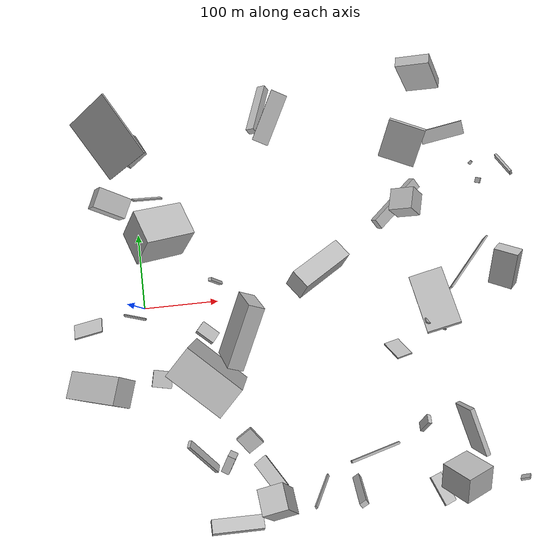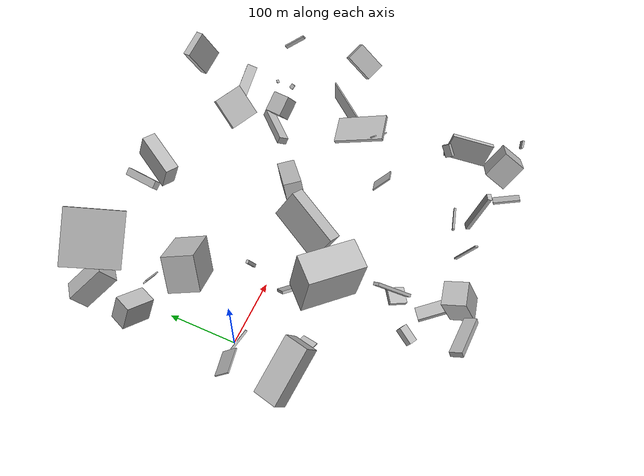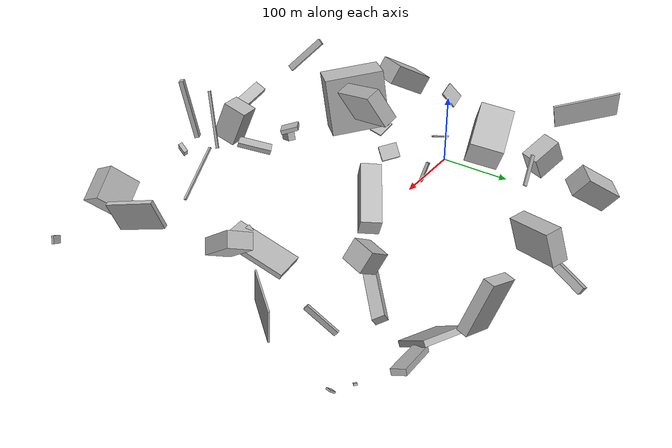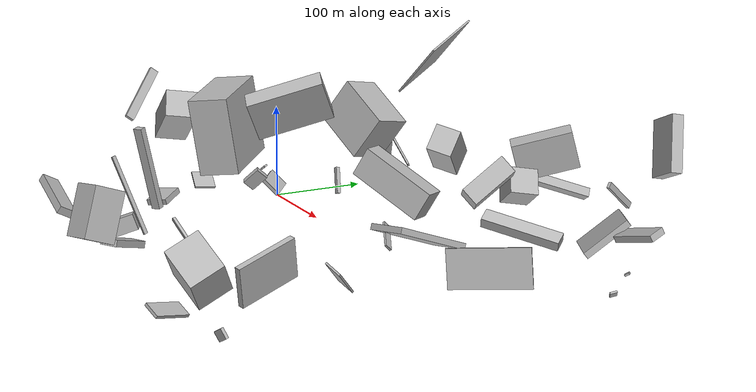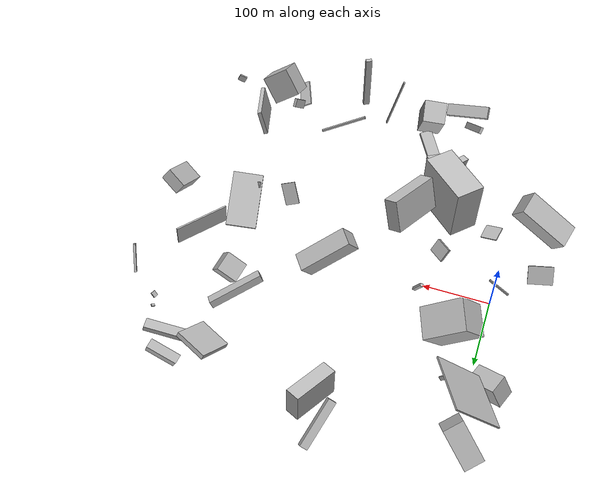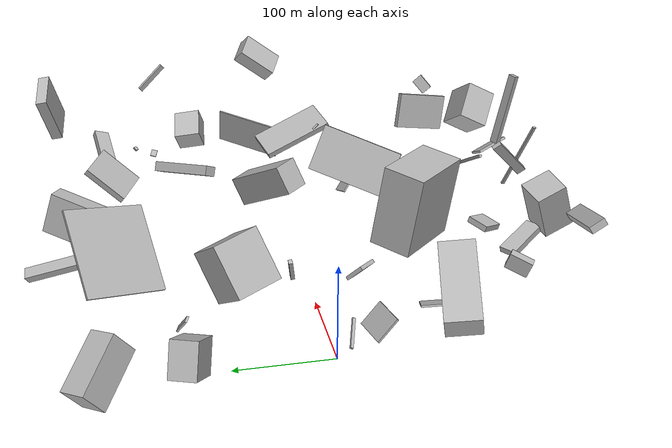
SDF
<sdf version="1.6">
 <world name="default">
  <scene>
   <sky><clouds><speed>12</speed></clouds></sky>
   <ambient>0.4 0.4 0.4 1</ambient>
   <background>0.7 0.7 0.7 1</background>
   <shadows>1</shadows>
  </scene>
  <gravity>0 0 -9.8066</gravity>
  <magnetic_field>6e-06 2.3e-05 -4.2e-05</magnetic_field>
  <physics default="0" name="default_physics" type="ode">
   <ode>
    <solver>
     <type>quick</type>
     <iters>10</iters>
     <sor>1.0</sor>
     <use_dynamic_moi_rescaling>0</use_dynamic_moi_rescaling>
    </solver>
    <constraints>
     <cfm>0</cfm>
     <erp>0.2</erp>
     <contact_max_correcting_vel>100</contact_max_correcting_vel>
     <contact_surface_layer>0.001</contact_surface_layer>
    </constraints>
   </ode>
   <max_step_size>0.004</max_step_size>
   <real_time_factor>1</real_time_factor>
   <real_time_update_rate>250</real_time_update_rate>
  </physics>
  <light name="sun" type="directional">
   <pose>0 0 10 0 0 0</pose>
   <diffuse>0.8 0.8 0.8 1</diffuse>
   <specular>0.2 0.2 0.2 1</specular>
   <attenuation>
    <range>1000</range>
    <constant>0.9</constant>
    <linear>0.01</linear>
    <quadratic>0.001</quadratic>
   </attenuation>
   <direction>-0.5 0.1 -0.9</direction>
  </light>
  <model name="building_1">
   <static>0</static>
   <pose>174.76403393132625 -261.1916165570033 57.12076695468662 -1.9465852813466014 -1.1806291250612504 2.127723736219772</pose>
   <link name="link">
    <gravity>0</gravity>
    <pose>0 0 17.0 0 0 0</pose>
    <collision name="collision"><geometry><box><size>53 34 34</size></box></geometry></collision>
    <visual name="visual">
     <cast_shadows>0</cast_shadows>
     <geometry><box><size>53 34 34</size></box></geometry>
     <material>
      <script>
       <uri>model://HANNAS_wall/materials/scripts</uri>
       <uri>model://HANNAS_wall/materials/textures</uri>
       <name>vrc/HANNAS_wall</name>
      </script>
     </material>
    </visual>
   </link>
  </model>
  <model name="building_2">
   <static>0</static>
   <pose>137.44057485879497 -193.82288614932293 51.82296679797397 0.5368724675130798 -1.267826346137055 -1.5012754337377865</pose>
   <link name="link">
    <gravity>0</gravity>
    <pose>0 0 12.5 0 0 0</pose>
    <collision name="collision"><geometry><box><size>6 23 25</size></box></geometry></collision>
    <visual name="visual">
     <cast_shadows>0</cast_shadows>
     <geometry><box><size>6 23 25</size></box></geometry>
     <material>
      <script>
       <uri>model://HANNAS_wall/materials/scripts</uri>
       <uri>model://HANNAS_wall/materials/textures</uri>
       <name>vrc/HANNAS_wall</name>
      </script>
     </material>
    </visual>
   </link>
  </model>
  <model name="building_3">
   <static>0</static>
   <pose>-13.142332344623217 229.01330973129404 36.53039877717357 2.516140512679927 0.23581262248129323 0.7354039695643405</pose>
   <link name="link">
    <gravity>0</gravity>
    <pose>0 0 16.0 0 0 0</pose>
    <collision name="collision"><geometry><box><size>30 62 32</size></box></geometry></collision>
    <visual name="visual">
     <cast_shadows>0</cast_shadows>
     <geometry><box><size>30 62 32</size></box></geometry>
     <material>
      <script>
       <uri>model://HANNAS_wall/materials/scripts</uri>
       <uri>model://HANNAS_wall/materials/textures</uri>
       <name>vrc/HANNAS_wall</name>
      </script>
     </material>
    </visual>
   </link>
  </model>
  <model name="building_4">
   <static>0</static>
   <pose>341.40589881930543 -98.12949780086578 26.922343741297254 -2.4000473050274187 0.3323563464819184 0.2360422141787129</pose>
   <link name="link">
    <gravity>0</gravity>
    <pose>0 0 17.0 0 0 0</pose>
    <collision name="collision"><geometry><box><size>22 2 34</size></box></geometry></collision>
    <visual name="visual">
     <cast_shadows>0</cast_shadows>
     <geometry><box><size>22 2 34</size></box></geometry>
     <material>
      <script>
       <uri>model://HANNAS_wall/materials/scripts</uri>
       <uri>model://HANNAS_wall/materials/textures</uri>
       <name>vrc/HANNAS_wall</name>
      </script>
     </material>
    </visual>
   </link>
  </model>
  <model name="building_5">
   <static>0</static>
   <pose>420.4450706443261 192.08133600425467 38.244185157729746 -0.3460875319772496 0.2630541077948425 -3.0369151049938066</pose>
   <link name="link">
    <gravity>0</gravity>
    <pose>0 0 3.5 0 0 0</pose>
    <collision name="collision"><geometry><box><size>55 17 7</size></box></geometry></collision>
    <visual name="visual">
     <cast_shadows>0</cast_shadows>
     <geometry><box><size>55 17 7</size></box></geometry>
     <material>
      <script>
       <uri>model://HANNAS_wall/materials/scripts</uri>
       <uri>model://HANNAS_wall/materials/textures</uri>
       <name>vrc/HANNAS_wall</name>
      </script>
     </material>
    </visual>
   </link>
  </model>
  <model name="building_6">
   <static>0</static>
   <pose>385.37197031461307 -246.12111310681948 49.98762739021009 -0.5796066343864041 -0.5728979590765522 -2.880075444618117</pose>
   <link name="link">
    <gravity>0</gravity>
    <pose>0 0 21.5 0 0 0</pose>
    <collision name="collision"><geometry><box><size>44 35 43</size></box></geometry></collision>
    <visual name="visual">
     <cast_shadows>0</cast_shadows>
     <geometry><box><size>44 35 43</size></box></geometry>
     <material>
      <script>
       <uri>model://HANNAS_wall/materials/scripts</uri>
       <uri>model://HANNAS_wall/materials/textures</uri>
       <name>vrc/HANNAS_wall</name>
      </script>
     </material>
    </visual>
   </link>
  </model>
  <model name="building_7">
   <static>0</static>
   <pose>-39.9601043361984 -20.543655618854164 73.91738490680595 1.48428821573666 -0.7788766664314518 -1.3211727748820783</pose>
   <link name="link">
    <gravity>0</gravity>
    <pose>0 0 17.5 0 0 0</pose>
    <collision name="collision"><geometry><box><size>26 2 35</size></box></geometry></collision>
    <visual name="visual">
     <cast_shadows>0</cast_shadows>
     <geometry><box><size>26 2 35</size></box></geometry>
     <material>
      <script>
       <uri>model://HANNAS_wall/materials/scripts</uri>
       <uri>model://HANNAS_wall/materials/textures</uri>
       <name>vrc/HANNAS_wall</name>
      </script>
     </material>
    </visual>
   </link>
  </model>
  <model name="building_8">
   <static>0</static>
   <pose>179.3774530188167 196.8957567592833 58.07764618887804 0.5809827563374339 1.263327074928431 1.6734442774629361</pose>
   <link name="link">
    <gravity>0</gravity>
    <pose>0 0 33.0 0 0 0</pose>
    <collision name="collision"><geometry><box><size>42 21 66</size></box></geometry></collision>
    <visual name="visual">
     <cast_shadows>0</cast_shadows>
     <geometry><box><size>42 21 66</size></box></geometry>
     <material>
      <script>
       <uri>model://HANNAS_wall/materials/scripts</uri>
       <uri>model://HANNAS_wall/materials/textures</uri>
       <name>vrc/HANNAS_wall</name>
      </script>
     </material>
    </visual>
   </link>
  </model>
  <model name="building_9">
   <static>0</static>
   <pose>458.8393475306712 152.50254787910015 18.227430110443407 0.044626587250302975 -0.5455158420354856 0.7418985183608435</pose>
   <link name="link">
    <gravity>0</gravity>
    <pose>0 0 1.0 0 0 0</pose>
    <collision name="collision"><geometry><box><size>5 4 2</size></box></geometry></collision>
    <visual name="visual">
     <cast_shadows>0</cast_shadows>
     <geometry><box><size>5 4 2</size></box></geometry>
     <material>
      <script>
       <uri>model://HANNAS_wall/materials/scripts</uri>
       <uri>model://HANNAS_wall/materials/textures</uri>
       <name>vrc/HANNAS_wall</name>
      </script>
     </material>
    </visual>
   </link>
  </model>
  <model name="building_10">
   <static>0</static>
   <pose>-21.14311308867637 151.84861686285404 38.23058987535932 1.479029737121212 -1.1069019069430237 -0.313514356927555</pose>
   <link name="link">
    <gravity>0</gravity>
    <pose>0 0 13.5 0 0 0</pose>
    <collision name="collision"><geometry><box><size>36 43 27</size></box></geometry></collision>
    <visual name="visual">
     <cast_shadows>0</cast_shadows>
     <geometry><box><size>36 43 27</size></box></geometry>
     <material>
      <script>
       <uri>model://HANNAS_wall/materials/scripts</uri>
       <uri>model://HANNAS_wall/materials/textures</uri>
       <name>vrc/HANNAS_wall</name>
      </script>
     </material>
    </visual>
   </link>
  </model>
  <model name="building_11">
   <static>0</static>
   <pose>99.6776641434036 -211.57683173928814 13.247598254533065 0.0012277414334820288 -0.34665042151826614 1.047330094114253</pose>
   <link name="link">
    <gravity>0</gravity>
    <pose>0 0 8.5 0 0 0</pose>
    <collision name="collision"><geometry><box><size>25 11 17</size></box></geometry></collision>
    <visual name="visual">
     <cast_shadows>0</cast_shadows>
     <geometry><box><size>25 11 17</size></box></geometry>
     <material>
      <script>
       <uri>model://HANNAS_wall/materials/scripts</uri>
       <uri>model://HANNAS_wall/materials/textures</uri>
       <name>vrc/HANNAS_wall</name>
      </script>
     </material>
    </visual>
   </link>
  </model>
  <model name="building_12">
   <static>0</static>
   <pose>50.98160392997099 65.51958481712794 90.52834760144931 -1.809222895999977 0.5750059273270411 0.23906830678151994</pose>
   <link name="link">
    <gravity>0</gravity>
    <pose>0 0 22.5 0 0 0</pose>
    <collision name="collision"><geometry><box><size>64 53 45</size></box></geometry></collision>
    <visual name="visual">
     <cast_shadows>0</cast_shadows>
     <geometry><box><size>64 53 45</size></box></geometry>
     <material>
      <script>
       <uri>model://HANNAS_wall/materials/scripts</uri>
       <uri>model://HANNAS_wall/materials/textures</uri>
       <name>vrc/HANNAS_wall</name>
      </script>
     </material>
    </visual>
   </link>
  </model>
  <model name="building_13">
   <static>0</static>
   <pose>-7.187353662784126 -13.824334462030851 30.850927333399234 -1.0000670019439075 -0.3531880219953244 -0.2892009443397319</pose>
   <link name="link">
    <gravity>0</gravity>
    <pose>0 0 1.5 0 0 0</pose>
    <collision name="collision"><geometry><box><size>34 2 3</size></box></geometry></collision>
    <visual name="visual">
     <cast_shadows>0</cast_shadows>
     <geometry><box><size>34 2 3</size></box></geometry>
     <material>
      <script>
       <uri>model://HANNAS_wall/materials/scripts</uri>
       <uri>model://HANNAS_wall/materials/textures</uri>
       <name>vrc/HANNAS_wall</name>
      </script>
     </material>
    </visual>
   </link>
  </model>
  <model name="building_14">
   <static>0</static>
   <pose>481.45745124884013 112.47323494386518 116.5465768185419 2.2764907275434236 0.08501116396194307 -2.7781557167793793</pose>
   <link name="link">
    <gravity>0</gravity>
    <pose>0 0 19.5 0 0 0</pose>
    <collision name="collision"><geometry><box><size>3 6 39</size></box></geometry></collision>
    <visual name="visual">
     <cast_shadows>0</cast_shadows>
     <geometry><box><size>3 6 39</size></box></geometry>
     <material>
      <script>
       <uri>model://HANNAS_wall/materials/scripts</uri>
       <uri>model://HANNAS_wall/materials/textures</uri>
       <name>vrc/HANNAS_wall</name>
      </script>
     </material>
    </visual>
   </link>
  </model>
  <model name="building_15">
   <static>0</static>
   <pose>77.67252831710414 -33.88355130005083 42.78044018897742 1.7903127179378941 -0.7527502821461889 0.6846464998567802</pose>
   <link name="link">
    <gravity>0</gravity>
    <pose>0 0 13.0 0 0 0</pose>
    <collision name="collision"><geometry><box><size>4 21 26</size></box></geometry></collision>
    <visual name="visual">
     <cast_shadows>0</cast_shadows>
     <geometry><box><size>4 21 26</size></box></geometry>
     <material>
      <script>
       <uri>model://HANNAS_wall/materials/scripts</uri>
       <uri>model://HANNAS_wall/materials/textures</uri>
       <name>vrc/HANNAS_wall</name>
      </script>
     </material>
    </visual>
   </link>
  </model>
  <model name="building_16">
   <static>0</static>
   <pose>137.6421933588809 -215.93511420280944 12.362711757770983 -0.06788354561329682 1.284528008729212 -1.041516225314252</pose>
   <link name="link">
    <gravity>0</gravity>
    <pose>0 0 24.5 0 0 0</pose>
    <collision name="collision"><geometry><box><size>7 19 49</size></box></geometry></collision>
    <visual name="visual">
     <cast_shadows>0</cast_shadows>
     <geometry><box><size>7 19 49</size></box></geometry>
     <material>
      <script>
       <uri>model://HANNAS_wall/materials/scripts</uri>
       <uri>model://HANNAS_wall/materials/textures</uri>
       <name>vrc/HANNAS_wall</name>
      </script>
     </material>
    </visual>
   </link>
  </model>
  <model name="building_17">
   <static>0</static>
   <pose>373.1318777806223 -274.7176386547732 25.29902818068745 2.6531286168737958 -0.22559002088007174 -1.1822902480010686</pose>
   <link name="link">
    <gravity>0</gravity>
    <pose>0 0 1.5 0 0 0</pose>
    <collision name="collision"><geometry><box><size>40 18 3</size></box></geometry></collision>
    <visual name="visual">
     <cast_shadows>0</cast_shadows>
     <geometry><box><size>40 18 3</size></box></geometry>
     <material>
      <script>
       <uri>model://HANNAS_wall/materials/scripts</uri>
       <uri>model://HANNAS_wall/materials/textures</uri>
       <name>vrc/HANNAS_wall</name>
      </script>
     </material>
    </visual>
   </link>
  </model>
  <model name="building_18">
   <static>0</static>
   <pose>456.231169254327 -19.590295817623087 113.45859345393524 -0.8609182686846745 -0.4292945809861269 -0.4669147305411864</pose>
   <link name="link">
    <gravity>0</gravity>
    <pose>0 0 23.0 0 0 0</pose>
    <collision name="collision"><geometry><box><size>29 18 46</size></box></geometry></collision>
    <visual name="visual">
     <cast_shadows>0</cast_shadows>
     <geometry><box><size>29 18 46</size></box></geometry>
     <material>
      <script>
       <uri>model://HANNAS_wall/materials/scripts</uri>
       <uri>model://HANNAS_wall/materials/textures</uri>
       <name>vrc/HANNAS_wall</name>
      </script>
     </material>
    </visual>
   </link>
  </model>
  <model name="building_19">
   <static>0</static>
   <pose>77.12793623367303 -112.44973406344647 107.95508436576495 -0.7183192758088999 -1.4192952107108545 -1.6171817880708719</pose>
   <link name="link">
    <gravity>0</gravity>
    <pose>0 0 21.0 0 0 0</pose>
    <collision name="collision"><geometry><box><size>80 80 42</size></box></geometry></collision>
    <visual name="visual">
     <cast_shadows>0</cast_shadows>
     <geometry><box><size>80 80 42</size></box></geometry>
     <material>
      <script>
       <uri>model://HANNAS_wall/materials/scripts</uri>
       <uri>model://HANNAS_wall/materials/textures</uri>
       <name>vrc/HANNAS_wall</name>
      </script>
     </material>
    </visual>
   </link>
  </model>
  <model name="building_20">
   <static>0</static>
   <pose>144.80835301332218 -57.46919959030744 154.7346637120487 -2.6880887901615846 -0.2967331152909848 1.12169595964467</pose>
   <link name="link">
    <gravity>0</gravity>
    <pose>0 0 23.0 0 0 0</pose>
    <collision name="collision"><geometry><box><size>80 20 46</size></box></geometry></collision>
    <visual name="visual">
     <cast_shadows>0</cast_shadows>
     <geometry><box><size>80 20 46</size></box></geometry>
     <material>
      <script>
       <uri>model://HANNAS_wall/materials/scripts</uri>
       <uri>model://HANNAS_wall/materials/textures</uri>
       <name>vrc/HANNAS_wall</name>
      </script>
     </material>
    </visual>
   </link>
  </model>
  <model name="building_21">
   <static>0</static>
   <pose>361.38698453308814 91.24470686951516 75.87404616083889 -0.1995832959797444 -0.5858015138158924 -0.12545880055004238</pose>
   <link name="link">
    <gravity>0</gravity>
    <pose>0 0 13.0 0 0 0</pose>
    <collision name="collision"><geometry><box><size>31 28 26</size></box></geometry></collision>
    <visual name="visual">
     <cast_shadows>0</cast_shadows>
     <geometry><box><size>31 28 26</size></box></geometry>
     <material>
      <script>
       <uri>model://HANNAS_wall/materials/scripts</uri>
       <uri>model://HANNAS_wall/materials/textures</uri>
       <name>vrc/HANNAS_wall</name>
      </script>
     </material>
    </visual>
   </link>
  </model>
  <model name="building_22">
   <static>0</static>
   <pose>242.94482526041907 29.148469110745395 83.47708698472934 -3.0268179724171405 -0.5027699101539865 -2.5496887325098347</pose>
   <link name="link">
    <gravity>0</gravity>
    <pose>0 0 15.5 0 0 0</pose>
    <collision name="collision"><geometry><box><size>80 26 31</size></box></geometry></collision>
    <visual name="visual">
     <cast_shadows>0</cast_shadows>
     <geometry><box><size>80 26 31</size></box></geometry>
     <material>
      <script>
       <uri>model://HANNAS_wall/materials/scripts</uri>
       <uri>model://HANNAS_wall/materials/textures</uri>
       <name>vrc/HANNAS_wall</name>
      </script>
     </material>
    </visual>
   </link>
  </model>
  <model name="building_23">
   <static>0</static>
   <pose>216.01927561080058 -250.01987470775464 86.20249726469098 2.554027030527731 -1.1876129120100614 -2.252086545282507</pose>
   <link name="link">
    <gravity>0</gravity>
    <pose>0 0 1.0 0 0 0</pose>
    <collision name="collision"><geometry><box><size>80 4 2</size></box></geometry></collision>
    <visual name="visual">
     <cast_shadows>0</cast_shadows>
     <geometry><box><size>80 4 2</size></box></geometry>
     <material>
      <script>
       <uri>model://HANNAS_wall/materials/scripts</uri>
       <uri>model://HANNAS_wall/materials/textures</uri>
       <name>vrc/HANNAS_wall</name>
      </script>
     </material>
    </visual>
   </link>
  </model>
  <model name="building_24">
   <static>0</static>
   <pose>407.8596732715332 -193.32444066660685 39.8004304169948 0.24334353642550166 0.17249963797386592 0.3234302104255207</pose>
   <link name="link">
    <gravity>0</gravity>
    <pose>0 0 20.5 0 0 0</pose>
    <collision name="collision"><geometry><box><size>6 65 41</size></box></geometry></collision>
    <visual name="visual">
     <cast_shadows>0</cast_shadows>
     <geometry><box><size>6 65 41</size></box></geometry>
     <material>
      <script>
       <uri>model://HANNAS_wall/materials/scripts</uri>
       <uri>model://HANNAS_wall/materials/textures</uri>
       <name>vrc/HANNAS_wall</name>
      </script>
     </material>
    </visual>
   </link>
  </model>
  <model name="building_25">
   <static>0</static>
   <pose>82.13633705001527 -186.98827346890664 150.10142929091128 0.9679443906152291 -0.7559394659294586 2.1484317698526265</pose>
   <link name="link">
    <gravity>0</gravity>
    <pose>0 0 2.0 0 0 0</pose>
    <collision name="collision"><geometry><box><size>60 9 4</size></box></geometry></collision>
    <visual name="visual">
     <cast_shadows>0</cast_shadows>
     <geometry><box><size>60 9 4</size></box></geometry>
     <material>
      <script>
       <uri>model://HANNAS_wall/materials/scripts</uri>
       <uri>model://HANNAS_wall/materials/textures</uri>
       <name>vrc/HANNAS_wall</name>
      </script>
     </material>
    </visual>
   </link>
  </model>
  <model name="building_26">
   <static>0</static>
   <pose>39.47801462366442 143.51573219266027 26.292073019996838 0.547392998861649 -0.6383210738935039 -0.6093533385644211</pose>
   <link name="link">
    <gravity>0</gravity>
    <pose>0 0 22.0 0 0 0</pose>
    <collision name="collision"><geometry><box><size>6 2 44</size></box></geometry></collision>
    <visual name="visual">
     <cast_shadows>0</cast_shadows>
     <geometry><box><size>6 2 44</size></box></geometry>
     <material>
      <script>
       <uri>model://HANNAS_wall/materials/scripts</uri>
       <uri>model://HANNAS_wall/materials/textures</uri>
       <name>vrc/HANNAS_wall</name>
      </script>
     </material>
    </visual>
   </link>
  </model>
  <model name="building_27">
   <static>0</static>
   <pose>260.9651761940514 -249.5442545033747 122.0985784056435 0.4588615325075218 -1.3611044292075112 -1.4996495077090144</pose>
   <link name="link">
    <gravity>0</gravity>
    <pose>0 0 3.0 0 0 0</pose>
    <collision name="collision"><geometry><box><size>80 9 6</size></box></geometry></collision>
    <visual name="visual">
     <cast_shadows>0</cast_shadows>
     <geometry><box><size>80 9 6</size></box></geometry>
     <material>
      <script>
       <uri>model://HANNAS_wall/materials/scripts</uri>
       <uri>model://HANNAS_wall/materials/textures</uri>
       <name>vrc/HANNAS_wall</name>
      </script>
     </material>
    </visual>
   </link>
  </model>
  <model name="building_28">
   <static>0</static>
   <pose>106.92760613358567 -284.28177144594923 65.42198563969656 2.8442884991821793 -0.4960458840091229 -1.4737273084882798</pose>
   <link name="link">
    <gravity>0</gravity>
    <pose>0 0 4.0 0 0 0</pose>
    <collision name="collision"><geometry><box><size>18 66 8</size></box></geometry></collision>
    <visual name="visual">
     <cast_shadows>0</cast_shadows>
     <geometry><box><size>18 66 8</size></box></geometry>
     <material>
      <script>
       <uri>model://HANNAS_wall/materials/scripts</uri>
       <uri>model://HANNAS_wall/materials/textures</uri>
       <name>vrc/HANNAS_wall</name>
      </script>
     </material>
    </visual>
   </link>
  </model>
  <model name="building_29">
   <static>0</static>
   <pose>103.12375354553565 21.904507703104645 39.356476627234976 1.745817009843516 0.40621714136695314 -3.076673244209159</pose>
   <link name="link">
    <gravity>0</gravity>
    <pose>0 0 2.0 0 0 0</pose>
    <collision name="collision"><geometry><box><size>5 28 4</size></box></geometry></collision>
    <visual name="visual">
     <cast_shadows>0</cast_shadows>
     <geometry><box><size>5 28 4</size></box></geometry>
     <material>
      <script>
       <uri>model://HANNAS_wall/materials/scripts</uri>
       <uri>model://HANNAS_wall/materials/textures</uri>
       <name>vrc/HANNAS_wall</name>
      </script>
     </material>
    </visual>
   </link>
  </model>
  <model name="building_30">
   <static>0</static>
   <pose>479.8658516381209 -270.1103902316631 34.00953690963725 -1.3104184468271987 -0.5046083507703536 0.16127115304545706</pose>
   <link name="link">
    <gravity>0</gravity>
    <pose>0 0 1.5 0 0 0</pose>
    <collision name="collision"><geometry><box><size>12 10 3</size></box></geometry></collision>
    <visual name="visual">
     <cast_shadows>0</cast_shadows>
     <geometry><box><size>12 10 3</size></box></geometry>
     <material>
      <script>
       <uri>model://HANNAS_wall/materials/scripts</uri>
       <uri>model://HANNAS_wall/materials/textures</uri>
       <name>vrc/HANNAS_wall</name>
      </script>
     </material>
    </visual>
   </link>
  </model>
  <model name="building_31">
   <static>0</static>
   <pose>366.35268574487105 183.68284184987732 32.224906786450916 2.4721468554616366 0.05811275490167883 2.7054746270924697</pose>
   <link name="link">
    <gravity>0</gravity>
    <pose>0 0 3.5 0 0 0</pose>
    <collision name="collision"><geometry><box><size>50 53 7</size></box></geometry></collision>
    <visual name="visual">
     <cast_shadows>0</cast_shadows>
     <geometry><box><size>50 53 7</size></box></geometry>
     <material>
      <script>
       <uri>model://HANNAS_wall/materials/scripts</uri>
       <uri>model://HANNAS_wall/materials/textures</uri>
       <name>vrc/HANNAS_wall</name>
      </script>
     </material>
    </visual>
   </link>
  </model>
  <model name="building_32">
   <static>0</static>
   <pose>348.1472513573062 -171.63688678211886 130.69845370696294 2.6898747541086494 -0.7210187377703487 -1.6467244325606638</pose>
   <link name="link">
    <gravity>0</gravity>
    <pose>0 0 9.0 0 0 0</pose>
    <collision name="collision"><geometry><box><size>12 5 18</size></box></geometry></collision>
    <visual name="visual">
     <cast_shadows>0</cast_shadows>
     <geometry><box><size>12 5 18</size></box></geometry>
     <material>
      <script>
       <uri>model://HANNAS_wall/materials/scripts</uri>
       <uri>model://HANNAS_wall/materials/textures</uri>
       <name>vrc/HANNAS_wall</name>
      </script>
     </material>
    </visual>
   </link>
  </model>
  <model name="building_33">
   <static>0</static>
   <pose>377.7208316095164 129.30286069609633 31.180583721223798 -1.136677692696024 1.0530025482160619 2.6971068862512038</pose>
   <link name="link">
    <gravity>0</gravity>
    <pose>0 0 40.0 0 0 0</pose>
    <collision name="collision"><geometry><box><size>11 15 80</size></box></geometry></collision>
    <visual name="visual">
     <cast_shadows>0</cast_shadows>
     <geometry><box><size>11 15 80</size></box></geometry>
     <material>
      <script>
       <uri>model://HANNAS_wall/materials/scripts</uri>
       <uri>model://HANNAS_wall/materials/textures</uri>
       <name>vrc/HANNAS_wall</name>
      </script>
     </material>
    </visual>
   </link>
  </model>
  <model name="building_34">
   <static>0</static>
   <pose>381.08700361020374 242.0643938851426 115.07885025046129 2.000015631841515 -1.1449088977233262 2.547188802385154</pose>
   <link name="link">
    <gravity>0</gravity>
    <pose>0 0 6.0 0 0 0</pose>
    <collision name="collision"><geometry><box><size>58 41 12</size></box></geometry></collision>
    <visual name="visual">
     <cast_shadows>0</cast_shadows>
     <geometry><box><size>58 41 12</size></box></geometry>
     <material>
      <script>
       <uri>model://HANNAS_wall/materials/scripts</uri>
       <uri>model://HANNAS_wall/materials/textures</uri>
       <name>vrc/HANNAS_wall</name>
      </script>
     </material>
    </visual>
   </link>
  </model>
  <model name="building_35">
   <static>0</static>
   <pose>388.426412448511 -66.7108204387853 74.80515691991113 -2.7779858219079614 1.175080460288925 -1.0216730269004197</pose>
   <link name="link">
    <gravity>0</gravity>
    <pose>0 0 40.0 0 0 0</pose>
    <collision name="collision"><geometry><box><size>6 44 80</size></box></geometry></collision>
    <visual name="visual">
     <cast_shadows>0</cast_shadows>
     <geometry><box><size>6 44 80</size></box></geometry>
     <material>
      <script>
       <uri>model://HANNAS_wall/materials/scripts</uri>
       <uri>model://HANNAS_wall/materials/textures</uri>
       <name>vrc/HANNAS_wall</name>
      </script>
     </material>
    </visual>
   </link>
  </model>
  <model name="building_36">
   <static>0</static>
   <pose>410.10111234142306 -15.237620175562704 34.68451302303034 0.7670465345547748 -1.458411991662197 -3.0354125790045012</pose>
   <link name="link">
    <gravity>0</gravity>
    <pose>0 0 40.0 0 0 0</pose>
    <collision name="collision"><geometry><box><size>39 2 80</size></box></geometry></collision>
    <visual name="visual">
     <cast_shadows>0</cast_shadows>
     <geometry><box><size>39 2 80</size></box></geometry>
     <material>
      <script>
       <uri>model://HANNAS_wall/materials/scripts</uri>
       <uri>model://HANNAS_wall/materials/textures</uri>
       <name>vrc/HANNAS_wall</name>
      </script>
     </material>
    </visual>
   </link>
  </model>
  <model name="building_37">
   <static>0</static>
   <pose>180.9879517392859 249.138203672921 20.215006833427935 -0.39104072464494655 -0.5333083527080351 -0.09212032412828193</pose>
   <link name="link">
    <gravity>0</gravity>
    <pose>0 0 5.0 0 0 0</pose>
    <collision name="collision"><geometry><box><size>12 72 10</size></box></geometry></collision>
    <visual name="visual">
     <cast_shadows>0</cast_shadows>
     <geometry><box><size>12 72 10</size></box></geometry>
     <material>
      <script>
       <uri>model://HANNAS_wall/materials/scripts</uri>
       <uri>model://HANNAS_wall/materials/textures</uri>
       <name>vrc/HANNAS_wall</name>
      </script>
     </material>
    </visual>
   </link>
  </model>
  <model name="building_38">
   <static>0</static>
   <pose>-36.50660517933547 -104.08808888011237 80.05626980080216 0.5450929578787134 -0.12948812589822342 -1.8339957803375788</pose>
   <link name="link">
    <gravity>0</gravity>
    <pose>0 0 14.5 0 0 0</pose>
    <collision name="collision"><geometry><box><size>34 80 29</size></box></geometry></collision>
    <visual name="visual">
     <cast_shadows>0</cast_shadows>
     <geometry><box><size>34 80 29</size></box></geometry>
     <material>
      <script>
       <uri>model://HANNAS_wall/materials/scripts</uri>
       <uri>model://HANNAS_wall/materials/textures</uri>
       <name>vrc/HANNAS_wall</name>
      </script>
     </material>
    </visual>
   </link>
  </model>
  <model name="building_39">
   <static>0</static>
   <pose>-26.98201108179722 189.73761783936718 110.4668668905955 0.7555709239603348 -0.2724992295939965 2.09070767807859</pose>
   <link name="link">
    <gravity>0</gravity>
    <pose>0 0 40.0 0 0 0</pose>
    <collision name="collision"><geometry><box><size>80 2 80</size></box></geometry></collision>
    <visual name="visual">
     <cast_shadows>0</cast_shadows>
     <geometry><box><size>80 2 80</size></box></geometry>
     <material>
      <script>
       <uri>model://HANNAS_wall/materials/scripts</uri>
       <uri>model://HANNAS_wall/materials/textures</uri>
       <name>vrc/HANNAS_wall</name>
      </script>
     </material>
    </visual>
   </link>
  </model>
  <model name="building_40">
   <static>0</static>
   <pose>321.71863092312503 -209.5530051775364 27.212814699304264 -1.0047521117299774 -0.12742693006741157 1.6716759749680585</pose>
   <link name="link">
    <gravity>0</gravity>
    <pose>0 0 40.0 0 0 0</pose>
    <collision name="collision"><geometry><box><size>3 3 80</size></box></geometry></collision>
    <visual name="visual">
     <cast_shadows>0</cast_shadows>
     <geometry><box><size>3 3 80</size></box></geometry>
     <material>
      <script>
       <uri>model://HANNAS_wall/materials/scripts</uri>
       <uri>model://HANNAS_wall/materials/textures</uri>
       <name>vrc/HANNAS_wall</name>
      </script>
     </material>
    </visual>
   </link>
  </model>
  <model name="building_41">
   <static>0</static>
   <pose>24.673707717352062 -86.11280958440122 33.89871398484425 1.3688132823192996 -1.1588870744762496 -0.004177978743315172</pose>
   <link name="link">
    <gravity>0</gravity>
    <pose>0 0 11.0 0 0 0</pose>
    <collision name="collision"><geometry><box><size>2 26 22</size></box></geometry></collision>
    <visual name="visual">
     <cast_shadows>0</cast_shadows>
     <geometry><box><size>2 26 22</size></box></geometry>
     <material>
      <script>
       <uri>model://HANNAS_wall/materials/scripts</uri>
       <uri>model://HANNAS_wall/materials/textures</uri>
       <name>vrc/HANNAS_wall</name>
      </script>
     </material>
    </visual>
   </link>
  </model>
  <model name="building_42">
   <static>0</static>
   <pose>392.5222746264573 -66.64238719386144 57.26242844030081 1.0074517200047621 0.6021163415044979 -2.3310389207411846</pose>
   <link name="link">
    <gravity>0</gravity>
    <pose>0 0 16.0 0 0 0</pose>
    <collision name="collision"><geometry><box><size>2 8 32</size></box></geometry></collision>
    <visual name="visual">
     <cast_shadows>0</cast_shadows>
     <geometry><box><size>2 8 32</size></box></geometry>
     <material>
      <script>
       <uri>model://HANNAS_wall/materials/scripts</uri>
       <uri>model://HANNAS_wall/materials/textures</uri>
       <name>vrc/HANNAS_wall</name>
      </script>
     </material>
    </visual>
   </link>
  </model>
  <model name="building_43">
   <static>0</static>
   <pose>468.3113543205113 129.79353069738715 6.728639140769264 2.3795460170890372 -0.21187512521114363 1.269235297580377</pose>
   <link name="link">
    <gravity>0</gravity>
    <pose>0 0 1.0 0 0 0</pose>
    <collision name="collision"><geometry><box><size>7 8 2</size></box></geometry></collision>
    <visual name="visual">
     <cast_shadows>0</cast_shadows>
     <geometry><box><size>7 8 2</size></box></geometry>
     <material>
      <script>
       <uri>model://HANNAS_wall/materials/scripts</uri>
       <uri>model://HANNAS_wall/materials/textures</uri>
       <name>vrc/HANNAS_wall</name>
      </script>
     </material>
    </visual>
   </link>
  </model>
 </world>
</sdf>
